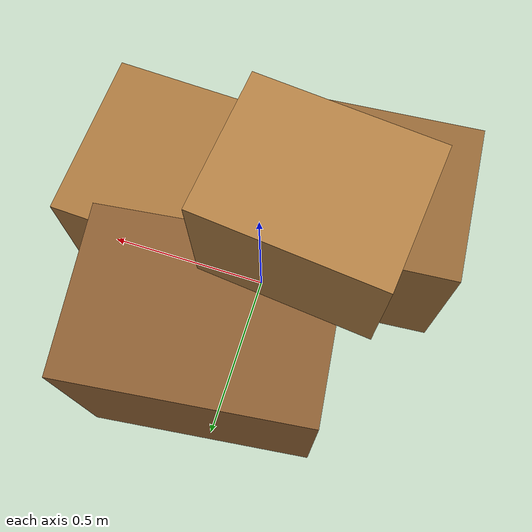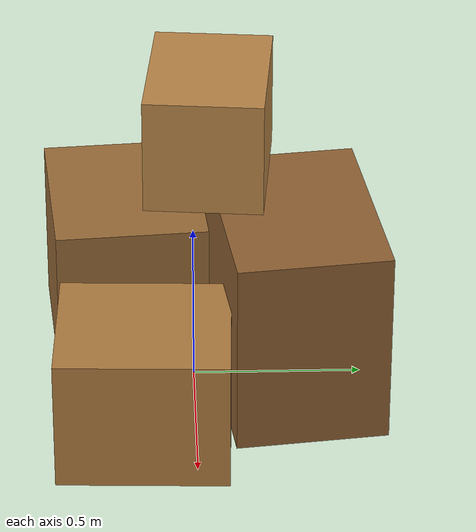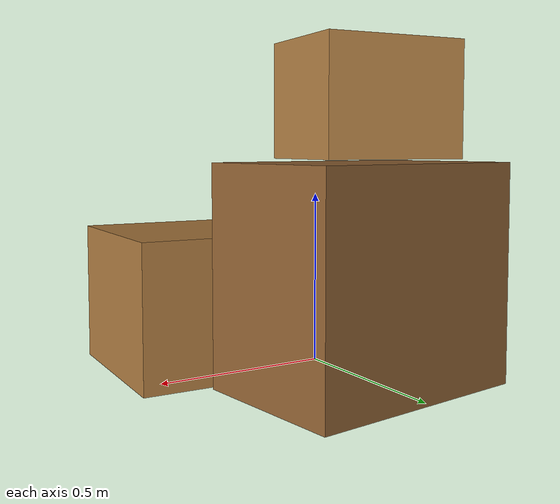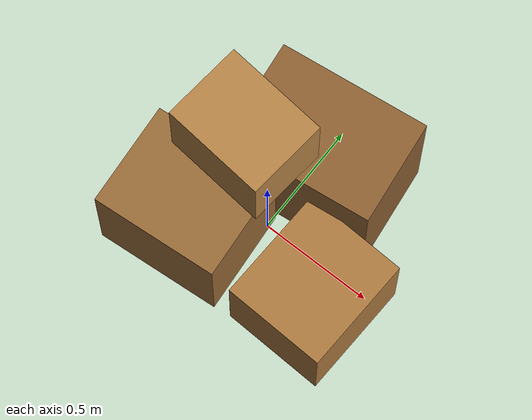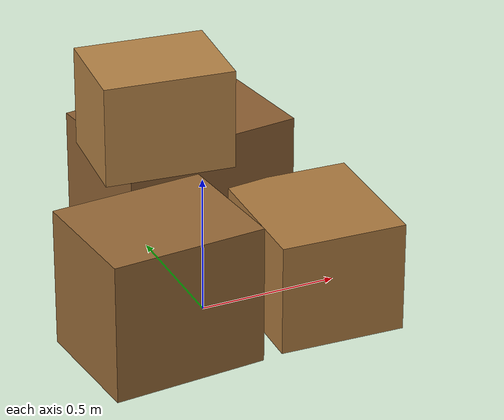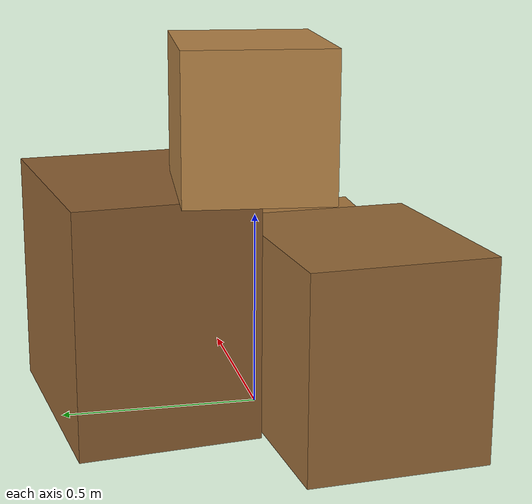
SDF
<?xml version="1.0"?>
<sdf version="1.11">
  <model name="warehouse_box_cluster">
    <static>true</static>
    <link name="link">
      <collision name="collision"><pose>0 0 0.35 0 0 0</pose><geometry><box><size>1.2 1.0 0.7</size></box></geometry></collision>
      <visual name="box_a"><pose>-0.25 -0.20 0.25 0 0 0.08</pose><geometry><box><size>0.55 0.45 0.50</size></box></geometry><material><ambient>0.60 0.42 0.22 1</ambient><diffuse>0.60 0.42 0.22 1</diffuse></material></visual>
      <visual name="box_b"><pose>0.35 -0.15 0.20 0 0 -0.04</pose><geometry><box><size>0.45 0.50 0.40</size></box></geometry><material><ambient>0.68 0.48 0.25 1</ambient><diffuse>0.68 0.48 0.25 1</diffuse></material></visual>
      <visual name="box_c"><pose>0.05 0.30 0.30 0 0 0.12</pose><geometry><box><size>0.65 0.45 0.60</size></box></geometry><material><ambient>0.56 0.38 0.20 1</ambient><diffuse>0.56 0.38 0.20 1</diffuse></material></visual>
      <visual name="box_d"><pose>-0.15 0.05 0.78 0 0 -0.10</pose><geometry><box><size>0.45 0.35 0.35</size></box></geometry><material><ambient>0.72 0.52 0.28 1</ambient><diffuse>0.72 0.52 0.28 1</diffuse></material></visual>
    </link>
  </model>
</sdf>
